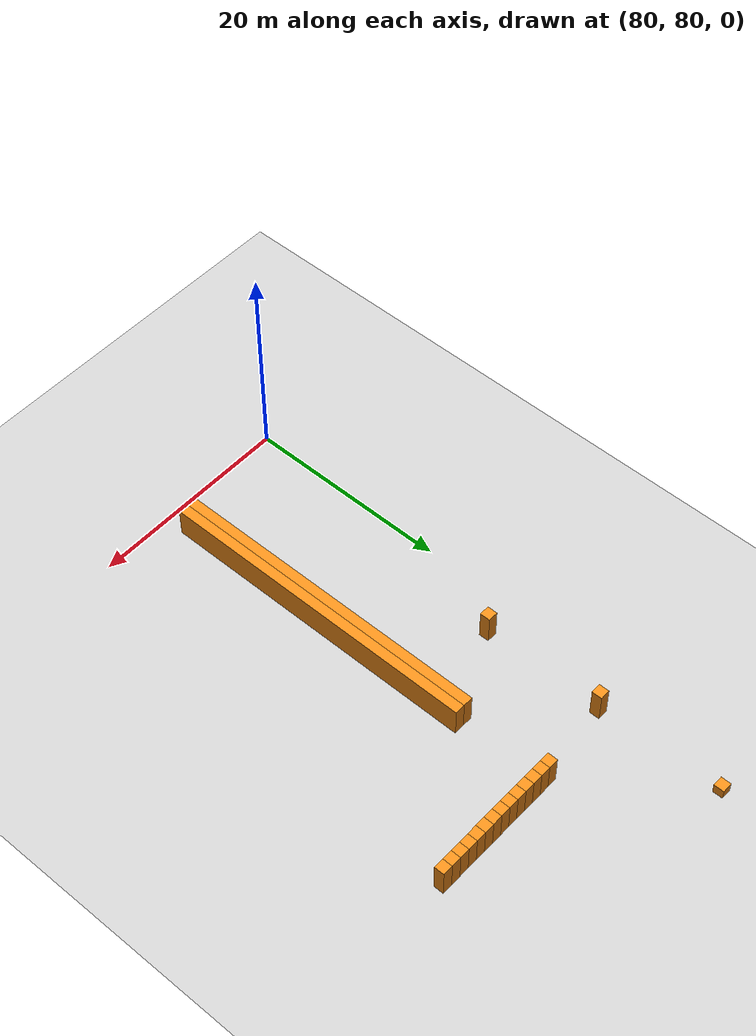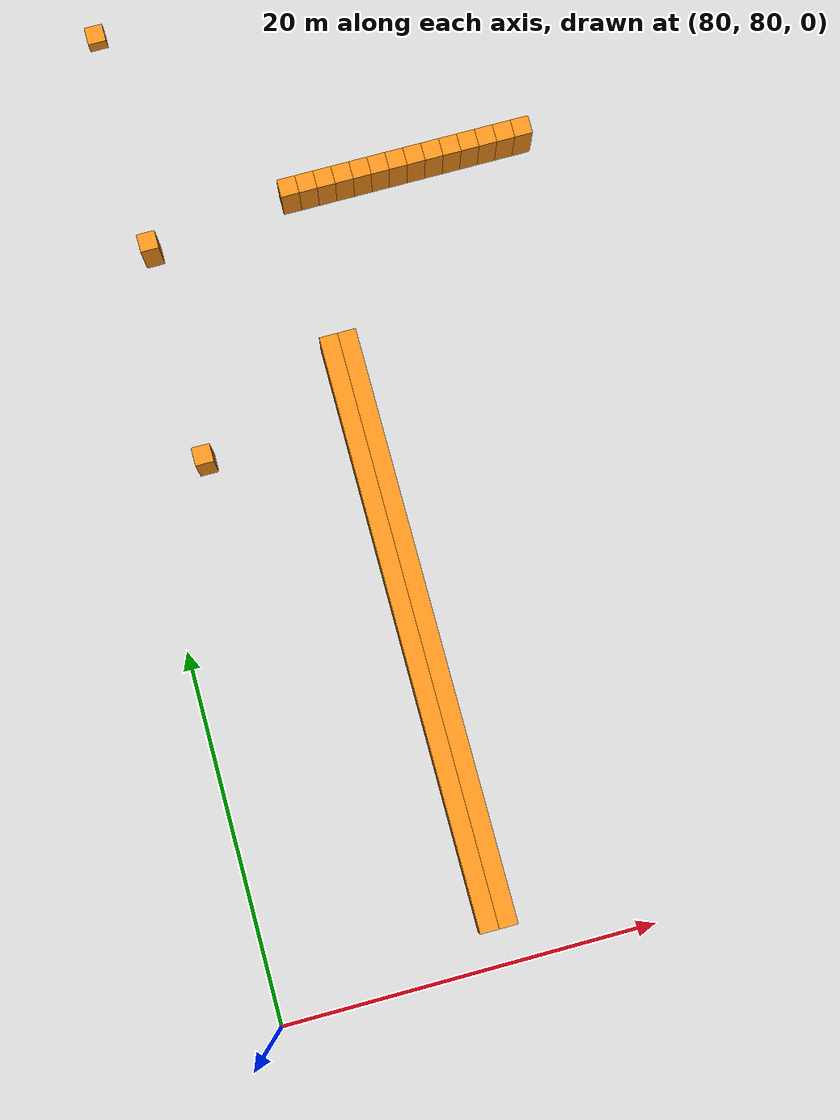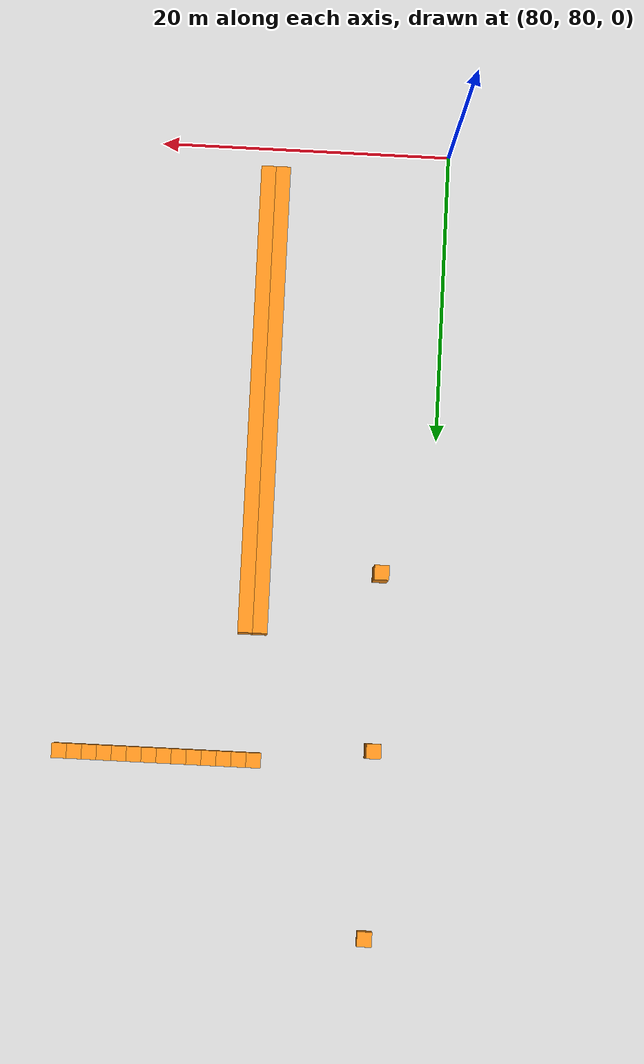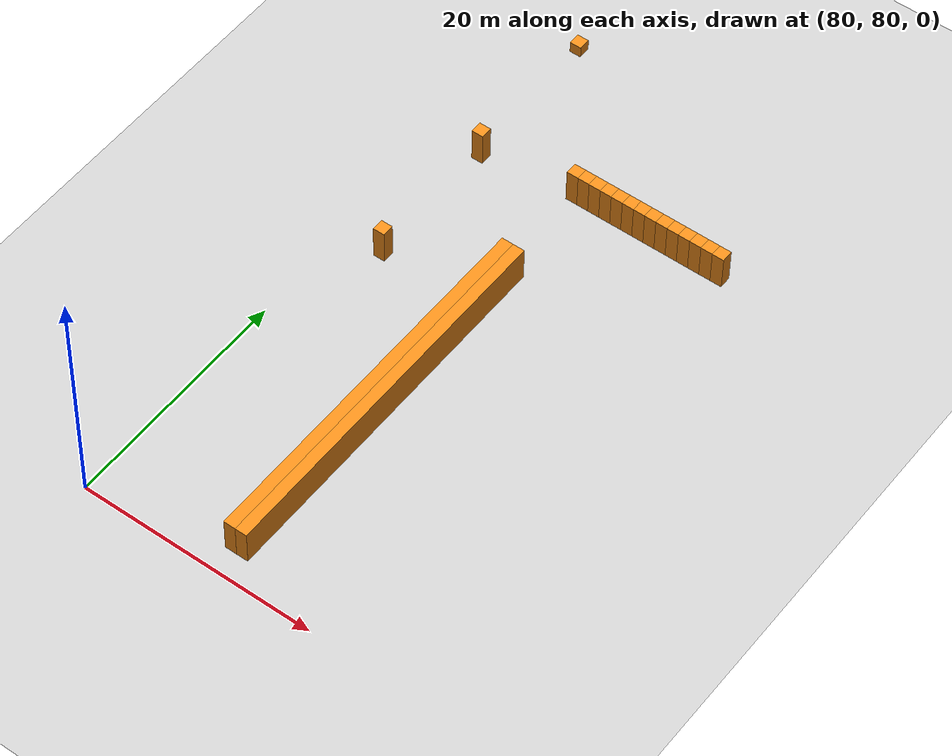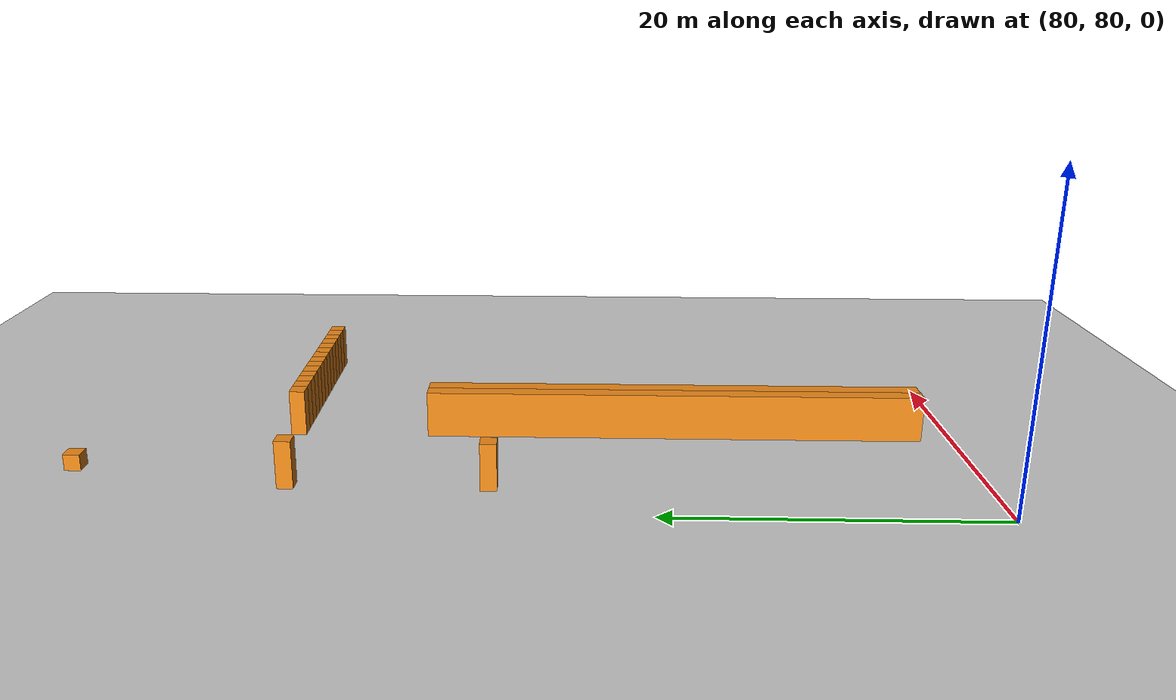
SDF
<sdf version="1.6">
 <world name="default">
  <include><uri>model://ground_plane</uri></include>
  <model name="unit_box_872">
   <pose>83.50   109.50     1.50 0 0 0</pose>
   <static>1</static>
   <link name="link">
    <inertial>
     <mass>5000</mass>
     <inertia><ixx>200</ixx><ixy>0</ixy><ixz>0</ixz><iyy>200</iyy><iyz>0</iyz><izz>200</izz></inertia>
    </inertial>
    <collision name="collision"><geometry><box><size>1 1 3</size></box></geometry></collision>
    <visual name="visual">
     <geometry><box><size>1 1 3</size></box></geometry>
     <material>
      <script><name>Gazebo/Orange</name><uri>file://media/materials/scripts/gazebo.material</uri></script>
     </material>
    </visual>
   </link>
  </model>
  <model name="unit_box_873">
   <pose>83.50   121.50     1.50 0 0 0</pose>
   <static>1</static>
   <link name="link">
    <inertial>
     <mass>5000</mass>
     <inertia><ixx>200</ixx><ixy>0</ixy><ixz>0</ixz><iyy>200</iyy><iyz>0</iyz><izz>200</izz></inertia>
    </inertial>
    <collision name="collision"><geometry><box><size>1 1 3</size></box></geometry></collision>
    <visual name="visual">
     <geometry><box><size>1 1 3</size></box></geometry>
     <material>
      <script><name>Gazebo/Orange</name><uri>file://media/materials/scripts/gazebo.material</uri></script>
     </material>
    </visual>
   </link>
  </model>
  <model name="unit_box_874">
   <pose>83.50   134.00     1.50 0 0 0</pose>
   <static>1</static>
   <link name="link">
    <inertial>
     <mass>5000</mass>
     <inertia><ixx>200</ixx><ixy>0</ixy><ixz>0</ixz><iyy>200</iyy><iyz>0</iyz><izz>200</izz></inertia>
    </inertial>
    <collision name="collision"><geometry><box><size>1 1 1</size></box></geometry></collision>
    <visual name="visual">
     <geometry><box><size>1 1 1</size></box></geometry>
     <material>
      <script><name>Gazebo/Orange</name><uri>file://media/materials/scripts/gazebo.material</uri></script>
     </material>
    </visual>
   </link>
  </model>
  <model name="unit_box_937">
   <pose>91.50    98.00     1.50 0 0 0</pose>
   <static>1</static>
   <link name="link">
    <inertial>
     <mass>5000</mass>
     <inertia><ixx>200</ixx><ixy>0</ixy><ixz>0</ixz><iyy>200</iyy><iyz>0</iyz><izz>200</izz></inertia>
    </inertial>
    <collision name="collision"><geometry><box><size>1 32 3</size></box></geometry></collision>
    <visual name="visual">
     <geometry><box><size>1 32 3</size></box></geometry>
     <material>
      <script><name>Gazebo/Orange</name><uri>file://media/materials/scripts/gazebo.material</uri></script>
     </material>
    </visual>
   </link>
  </model>
  <model name="unit_box_938">
   <pose>91.50   122.50     1.50 0 0 0</pose>
   <static>1</static>
   <link name="link">
    <inertial>
     <mass>5000</mass>
     <inertia><ixx>200</ixx><ixy>0</ixy><ixz>0</ixz><iyy>200</iyy><iyz>0</iyz><izz>200</izz></inertia>
    </inertial>
    <collision name="collision"><geometry><box><size>1 1 3</size></box></geometry></collision>
    <visual name="visual">
     <geometry><box><size>1 1 3</size></box></geometry>
     <material>
      <script><name>Gazebo/Orange</name><uri>file://media/materials/scripts/gazebo.material</uri></script>
     </material>
    </visual>
   </link>
  </model>
  <model name="unit_box_945">
   <pose>92.50    98.00     1.50 0 0 0</pose>
   <static>1</static>
   <link name="link">
    <inertial>
     <mass>5000</mass>
     <inertia><ixx>200</ixx><ixy>0</ixy><ixz>0</ixz><iyy>200</iyy><iyz>0</iyz><izz>200</izz></inertia>
    </inertial>
    <collision name="collision"><geometry><box><size>1 32 3</size></box></geometry></collision>
    <visual name="visual">
     <geometry><box><size>1 32 3</size></box></geometry>
     <material>
      <script><name>Gazebo/Orange</name><uri>file://media/materials/scripts/gazebo.material</uri></script>
     </material>
    </visual>
   </link>
  </model>
  <model name="unit_box_946">
   <pose>92.50   122.50     1.50 0 0 0</pose>
   <static>1</static>
   <link name="link">
    <inertial>
     <mass>5000</mass>
     <inertia><ixx>200</ixx><ixy>0</ixy><ixz>0</ixz><iyy>200</iyy><iyz>0</iyz><izz>200</izz></inertia>
    </inertial>
    <collision name="collision"><geometry><box><size>1 1 3</size></box></geometry></collision>
    <visual name="visual">
     <geometry><box><size>1 1 3</size></box></geometry>
     <material>
      <script><name>Gazebo/Orange</name><uri>file://media/materials/scripts/gazebo.material</uri></script>
     </material>
    </visual>
   </link>
  </model>
  <model name="unit_box_954">
   <pose>93.50   122.50     1.50 0 0 0</pose>
   <static>1</static>
   <link name="link">
    <inertial>
     <mass>5000</mass>
     <inertia><ixx>200</ixx><ixy>0</ixy><ixz>0</ixz><iyy>200</iyy><iyz>0</iyz><izz>200</izz></inertia>
    </inertial>
    <collision name="collision"><geometry><box><size>1 1 3</size></box></geometry></collision>
    <visual name="visual">
     <geometry><box><size>1 1 3</size></box></geometry>
     <material>
      <script><name>Gazebo/Orange</name><uri>file://media/materials/scripts/gazebo.material</uri></script>
     </material>
    </visual>
   </link>
  </model>
  <model name="unit_box_962">
   <pose>94.50   122.50     1.50 0 0 0</pose>
   <static>1</static>
   <link name="link">
    <inertial>
     <mass>5000</mass>
     <inertia><ixx>200</ixx><ixy>0</ixy><ixz>0</ixz><iyy>200</iyy><iyz>0</iyz><izz>200</izz></inertia>
    </inertial>
    <collision name="collision"><geometry><box><size>1 1 3</size></box></geometry></collision>
    <visual name="visual">
     <geometry><box><size>1 1 3</size></box></geometry>
     <material>
      <script><name>Gazebo/Orange</name><uri>file://media/materials/scripts/gazebo.material</uri></script>
     </material>
    </visual>
   </link>
  </model>
  <model name="unit_box_969">
   <pose>95.50   122.50     1.50 0 0 0</pose>
   <static>1</static>
   <link name="link">
    <inertial>
     <mass>5000</mass>
     <inertia><ixx>200</ixx><ixy>0</ixy><ixz>0</ixz><iyy>200</iyy><iyz>0</iyz><izz>200</izz></inertia>
    </inertial>
    <collision name="collision"><geometry><box><size>1 1 3</size></box></geometry></collision>
    <visual name="visual">
     <geometry><box><size>1 1 3</size></box></geometry>
     <material>
      <script><name>Gazebo/Orange</name><uri>file://media/materials/scripts/gazebo.material</uri></script>
     </material>
    </visual>
   </link>
  </model>
  <model name="unit_box_976">
   <pose>96.50   122.50     1.50 0 0 0</pose>
   <static>1</static>
   <link name="link">
    <inertial>
     <mass>5000</mass>
     <inertia><ixx>200</ixx><ixy>0</ixy><ixz>0</ixz><iyy>200</iyy><iyz>0</iyz><izz>200</izz></inertia>
    </inertial>
    <collision name="collision"><geometry><box><size>1 1 3</size></box></geometry></collision>
    <visual name="visual">
     <geometry><box><size>1 1 3</size></box></geometry>
     <material>
      <script><name>Gazebo/Orange</name><uri>file://media/materials/scripts/gazebo.material</uri></script>
     </material>
    </visual>
   </link>
  </model>
  <model name="unit_box_984">
   <pose>97.50   122.50     1.50 0 0 0</pose>
   <static>1</static>
   <link name="link">
    <inertial>
     <mass>5000</mass>
     <inertia><ixx>200</ixx><ixy>0</ixy><ixz>0</ixz><iyy>200</iyy><iyz>0</iyz><izz>200</izz></inertia>
    </inertial>
    <collision name="collision"><geometry><box><size>1 1 3</size></box></geometry></collision>
    <visual name="visual">
     <geometry><box><size>1 1 3</size></box></geometry>
     <material>
      <script><name>Gazebo/Orange</name><uri>file://media/materials/scripts/gazebo.material</uri></script>
     </material>
    </visual>
   </link>
  </model>
  <model name="unit_box_992">
   <pose>98.50   122.50     1.50 0 0 0</pose>
   <static>1</static>
   <link name="link">
    <inertial>
     <mass>5000</mass>
     <inertia><ixx>200</ixx><ixy>0</ixy><ixz>0</ixz><iyy>200</iyy><iyz>0</iyz><izz>200</izz></inertia>
    </inertial>
    <collision name="collision"><geometry><box><size>1 1 3</size></box></geometry></collision>
    <visual name="visual">
     <geometry><box><size>1 1 3</size></box></geometry>
     <material>
      <script><name>Gazebo/Orange</name><uri>file://media/materials/scripts/gazebo.material</uri></script>
     </material>
    </visual>
   </link>
  </model>
  <model name="unit_box_1000">
   <pose>99.50   122.50     1.50 0 0 0</pose>
   <static>1</static>
   <link name="link">
    <inertial>
     <mass>5000</mass>
     <inertia><ixx>200</ixx><ixy>0</ixy><ixz>0</ixz><iyy>200</iyy><iyz>0</iyz><izz>200</izz></inertia>
    </inertial>
    <collision name="collision"><geometry><box><size>1 1 3</size></box></geometry></collision>
    <visual name="visual">
     <geometry><box><size>1 1 3</size></box></geometry>
     <material>
      <script><name>Gazebo/Orange</name><uri>file://media/materials/scripts/gazebo.material</uri></script>
     </material>
    </visual>
   </link>
  </model>
  <model name="unit_box_1007">
   <pose>100.50   122.50     1.50 0 0 0</pose>
   <static>1</static>
   <link name="link">
    <inertial>
     <mass>5000</mass>
     <inertia><ixx>200</ixx><ixy>0</ixy><ixz>0</ixz><iyy>200</iyy><iyz>0</iyz><izz>200</izz></inertia>
    </inertial>
    <collision name="collision"><geometry><box><size>1 1 3</size></box></geometry></collision>
    <visual name="visual">
     <geometry><box><size>1 1 3</size></box></geometry>
     <material>
      <script><name>Gazebo/Orange</name><uri>file://media/materials/scripts/gazebo.material</uri></script>
     </material>
    </visual>
   </link>
  </model>
  <model name="unit_box_1013">
   <pose>101.50   122.50     1.50 0 0 0</pose>
   <static>1</static>
   <link name="link">
    <inertial>
     <mass>5000</mass>
     <inertia><ixx>200</ixx><ixy>0</ixy><ixz>0</ixz><iyy>200</iyy><iyz>0</iyz><izz>200</izz></inertia>
    </inertial>
    <collision name="collision"><geometry><box><size>1 1 3</size></box></geometry></collision>
    <visual name="visual">
     <geometry><box><size>1 1 3</size></box></geometry>
     <material>
      <script><name>Gazebo/Orange</name><uri>file://media/materials/scripts/gazebo.material</uri></script>
     </material>
    </visual>
   </link>
  </model>
  <model name="unit_box_1020">
   <pose>102.50   122.50     1.50 0 0 0</pose>
   <static>1</static>
   <link name="link">
    <inertial>
     <mass>5000</mass>
     <inertia><ixx>200</ixx><ixy>0</ixy><ixz>0</ixz><iyy>200</iyy><iyz>0</iyz><izz>200</izz></inertia>
    </inertial>
    <collision name="collision"><geometry><box><size>1 1 3</size></box></geometry></collision>
    <visual name="visual">
     <geometry><box><size>1 1 3</size></box></geometry>
     <material>
      <script><name>Gazebo/Orange</name><uri>file://media/materials/scripts/gazebo.material</uri></script>
     </material>
    </visual>
   </link>
  </model>
  <model name="unit_box_1027">
   <pose>103.50   122.50     1.50 0 0 0</pose>
   <static>1</static>
   <link name="link">
    <inertial>
     <mass>5000</mass>
     <inertia><ixx>200</ixx><ixy>0</ixy><ixz>0</ixz><iyy>200</iyy><iyz>0</iyz><izz>200</izz></inertia>
    </inertial>
    <collision name="collision"><geometry><box><size>1 1 3</size></box></geometry></collision>
    <visual name="visual">
     <geometry><box><size>1 1 3</size></box></geometry>
     <material>
      <script><name>Gazebo/Orange</name><uri>file://media/materials/scripts/gazebo.material</uri></script>
     </material>
    </visual>
   </link>
  </model>
  <model name="unit_box_1034">
   <pose>104.50   122.50     1.50 0 0 0</pose>
   <static>1</static>
   <link name="link">
    <inertial>
     <mass>5000</mass>
     <inertia><ixx>200</ixx><ixy>0</ixy><ixz>0</ixz><iyy>200</iyy><iyz>0</iyz><izz>200</izz></inertia>
    </inertial>
    <collision name="collision"><geometry><box><size>1 1 3</size></box></geometry></collision>
    <visual name="visual">
     <geometry><box><size>1 1 3</size></box></geometry>
     <material>
      <script><name>Gazebo/Orange</name><uri>file://media/materials/scripts/gazebo.material</uri></script>
     </material>
    </visual>
   </link>
  </model>
 </world>
</sdf>
